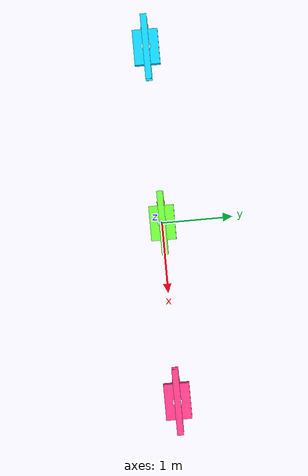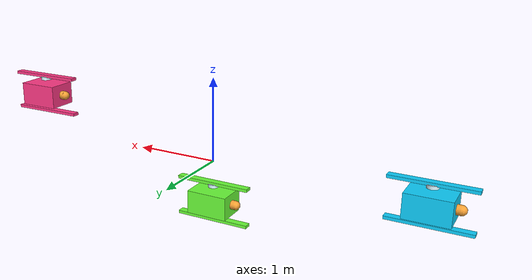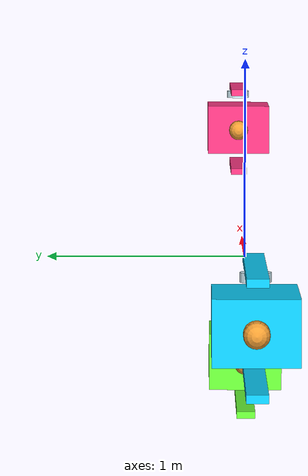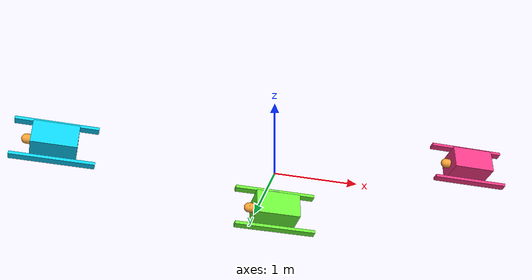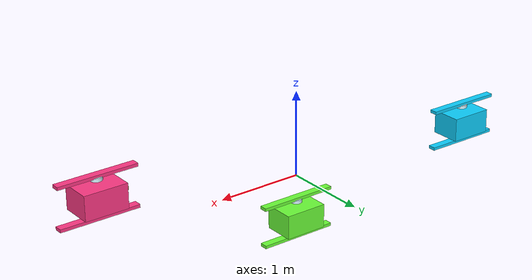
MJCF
<!-- Copyright 2026 The MuJoCo Metal contributors. Apache-2.0. -->
<mujoco model="space docking ballet">
  <compiler angle="radian" inertiafromgeom="true"/>
  <option timestep=".002" gravity="0 0 0" integrator="Euler">
    <flag contact="disable" energy="enable"/>
  </option>
  <visual>
    <global offwidth="1500" offheight="600"/>
    <headlight ambient=".48 .52 .62" diffuse=".72 .76 .84" specular=".20 .22 .28"/>
  </visual>
  <default>
    <geom contype="0" conaffinity="0"/>
  </default>
  <worldbody>
    <light pos="0 -2 6" dir="0 0 -1" diffuse=".8 .8 .8"/>
    <body name="craft_low" pos="-2.5 0 0">
      <joint name="free_low" type="free" damping=".08"/>
      <geom type="box" size=".25 .18 .14" mass="2.5" rgba=".05 .82 1 1"/>
      <geom type="box" pos="0 0 .23" size=".46 .045 .018" mass=".12" rgba=".05 .82 1 .9"/>
      <geom type="box" pos="0 0 -.23" size=".46 .045 .018" mass=".12" rgba=".05 .82 1 .9"/>
      <geom type="capsule" fromto="-.17 0 0 -.30 0 0" size=".055" rgba=".95 .62 .2 1"/>
      <geom type="cylinder" pos="0 0 .20" size=".065 .02" rgba=".84 .96 1 1"/>
    </body>
    <body name="craft_mid" pos="0 0 -.5">
      <joint name="free_mid" type="free" damping=".65"/>
      <geom type="box" size=".25 .18 .14" mass="2.5" rgba=".42 1 .22 1"/>
      <geom type="box" pos="0 0 .23" size=".46 .045 .018" mass=".12" rgba=".42 1 .22 .9"/>
      <geom type="box" pos="0 0 -.23" size=".46 .045 .018" mass=".12" rgba=".42 1 .22 .9"/>
      <geom type="capsule" fromto="-.17 0 0 -.30 0 0" size=".055" rgba=".95 .62 .2 1"/>
      <geom type="cylinder" pos="0 0 .20" size=".065 .02" rgba=".84 .96 1 1"/>
    </body>
    <body name="craft_high" pos="2.5 0 .5">
      <joint name="free_high" type="free" damping="2.4"/>
      <geom type="box" size=".25 .18 .14" mass="2.5" rgba="1 .22 .52 1"/>
      <geom type="box" pos="0 0 .23" size=".46 .045 .018" mass=".12" rgba="1 .22 .52 .9"/>
      <geom type="box" pos="0 0 -.23" size=".46 .045 .018" mass=".12" rgba="1 .22 .52 .9"/>
      <geom type="capsule" fromto="-.17 0 0 -.30 0 0" size=".055" rgba=".95 .62 .2 1"/>
      <geom type="cylinder" pos="0 0 .20" size=".065 .02" rgba=".84 .96 1 1"/>
    </body>
  </worldbody>
</mujoco>
